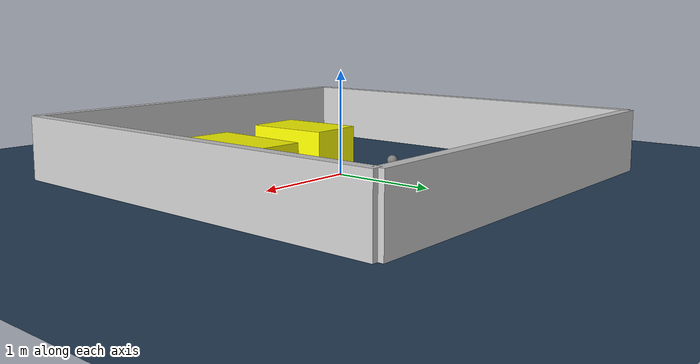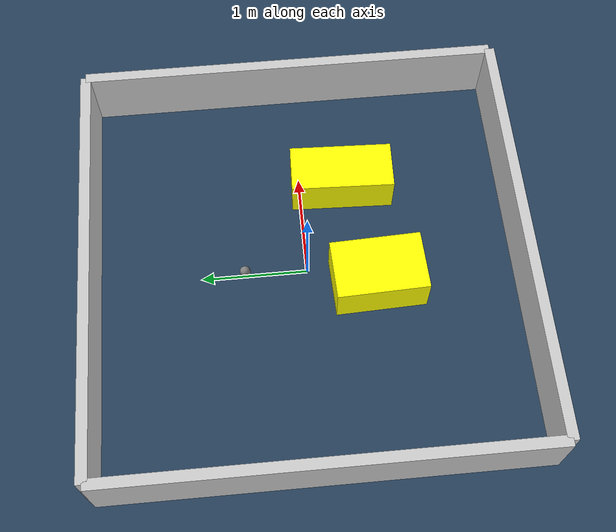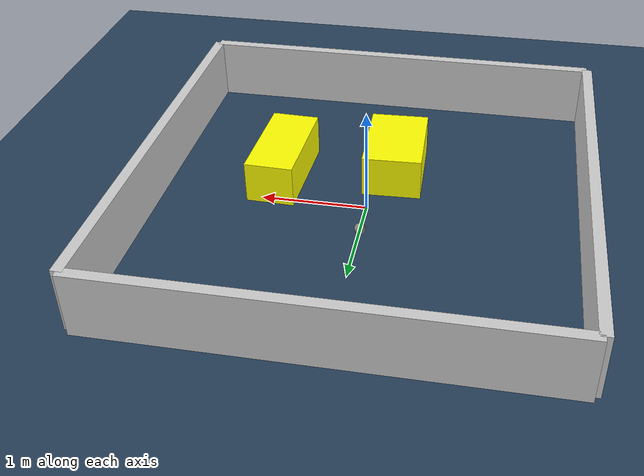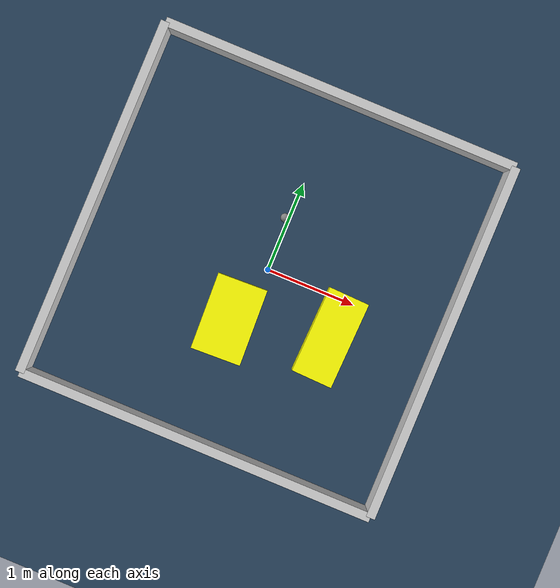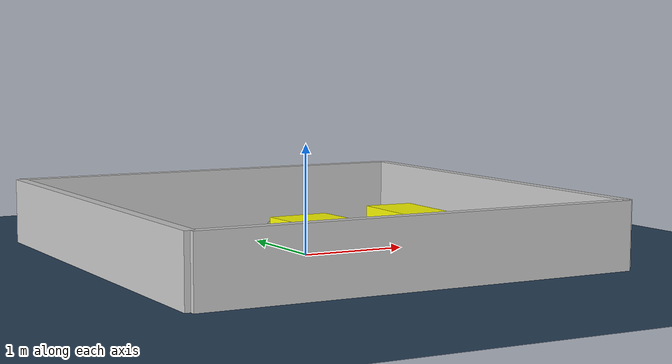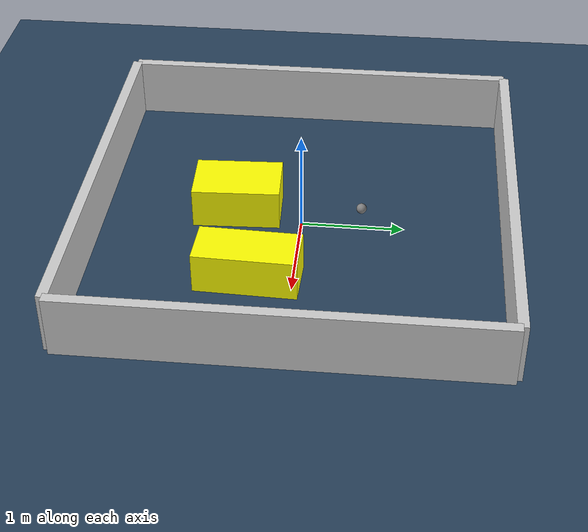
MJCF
<?xml version="1.0" ?>
<mujoco model="generated_environment">
  <option timestep="0.01" integrator="RK4" cone="elliptic"/>
  <default>
    <geom density="1"/>
  </default>
  <asset>
    <texture builtin="gradient" height="3072" rgb1="0.3 0.5 0.7" rgb2="0 0 0" type="skybox" width="512"/>
    <texture builtin="checker" height="300" mark="edge" markrgb="0.8 0.8 0.8" name="groundplane" rgb1="0.2 0.3 0.4" rgb2="0.1 0.2 0.3" type="2d" width="300"/>
    <material name="groundplane" reflectance="0.2" texrepeat="5 5" texture="groundplane" texuniform="true"/>
    <material name="robot" rgba="0.0 1.0 0.0 1"/>
  </asset>
  <worldbody>
    <light dir="0 0 -1" directional="true" pos="0 0 1.5"/>
    <geom condim="4" friction="1.0 0.005 0.001" material="groundplane" name="floor" size="0 0 0.05" type="plane"/>
    <body name="walls">
      <geom name="wall_1" condim="4" pos="-2.0 0.0 0.3" rgba="0.800000011920929 0.800000011920929 0.800000011920929 1.0" size="0.05 2.0 0.3" type="box"/>
      <geom name="wall_2" condim="4" pos="2.0 0.0 0.3" rgba="0.800000011920929 0.800000011920929 0.800000011920929 1.0" size="0.05 2.0 0.3" type="box"/>
      <geom name="wall_3" condim="4" pos="0.0 -2.0 0.3" rgba="0.800000011920929 0.800000011920929 0.800000011920929 1.0" size="2.0 0.05 0.3" type="box"/>
      <geom name="wall_4" condim="4" pos="0.0 2.0 0.3" rgba="0.800000011920929 0.800000011920929 0.800000011920929 1.0" size="2.0 0.05 0.3" type="box"/>
    </body>
    <body name="robot">
      <joint name="joint_x" type="slide" pos="0 0 0" axis="1 0 0"/>
      <joint name="joint_y" type="slide" pos="0 0 0" axis="0 1 0"/>
      <geom name="robot" type="sphere" pos="-0.04285235872783355 0.5848523640632348 0.2" size="0.05" mass="5." friction="1.0 0.005 0.0001" condim="4"/>
      <site name="sensor_ball"/>
    </body>
    <body name="obstacle_1_movable">
      <geom name="obstacle_1_movable" condim="4" pos="0.8923097646924198 -0.4113629509439052 0.2" euler="0 0 87.99153162747835" friction="1.0 0.005 0.001" rgba="1 1 0 1" size="0.4868082507868186 0.22810485725521867 0.2" type="box" mass="0.1"/>
      <joint type="free"/>
    </body>
    <body name="obstacle_2_movable">
      <geom name="obstacle_2_movable" condim="4" pos="-0.17780226814466404 -0.6452557962638208 0.2" euler="0 0 182.28718347486776" friction="1.0 0.005 0.001" rgba="1 1 0 1" size="0.2785354159064176 0.425743137497428 0.2" type="box" mass="0.1"/>
      <joint type="free"/>
    </body>
  </worldbody>
  <actuator>
    <motor name="actuator_x" joint="joint_x" gear="1" ctrlrange="-1 1"/>
    <motor name="actuator_y" joint="joint_y" gear="1" ctrlrange="-1 1"/>
  </actuator>
</mujoco>
